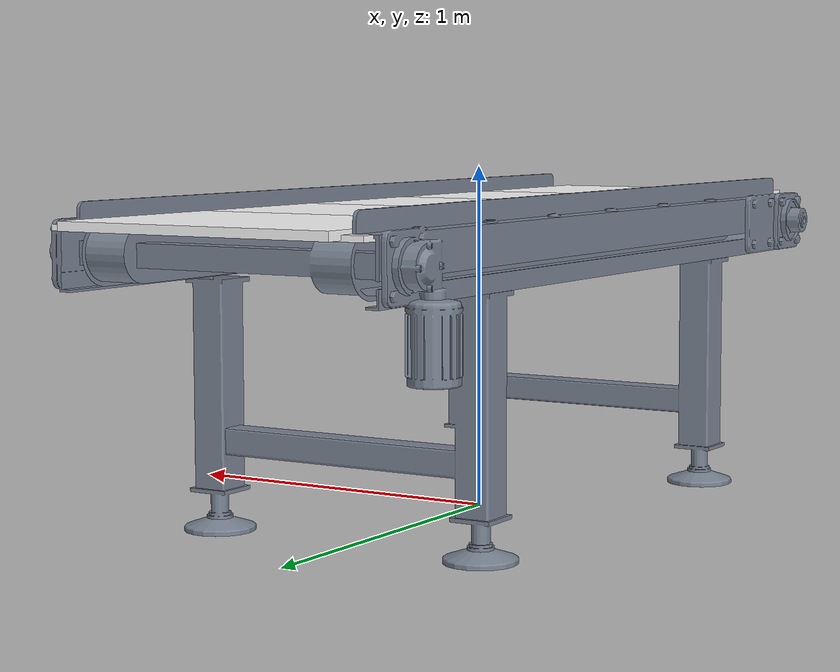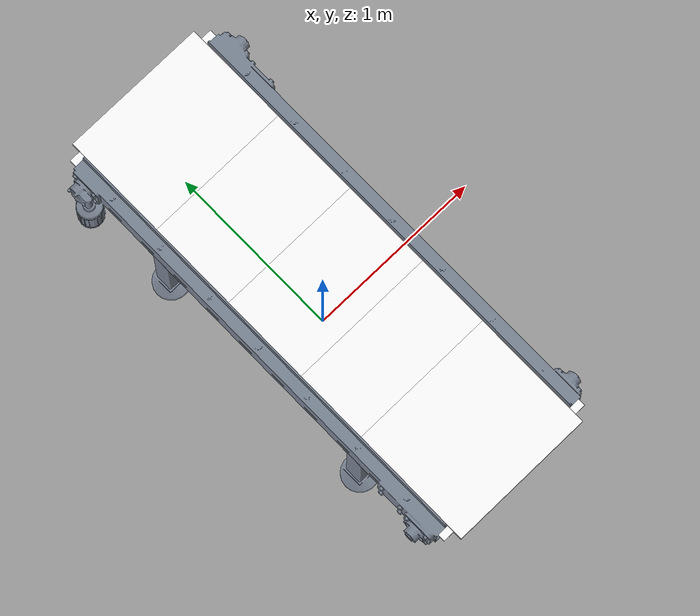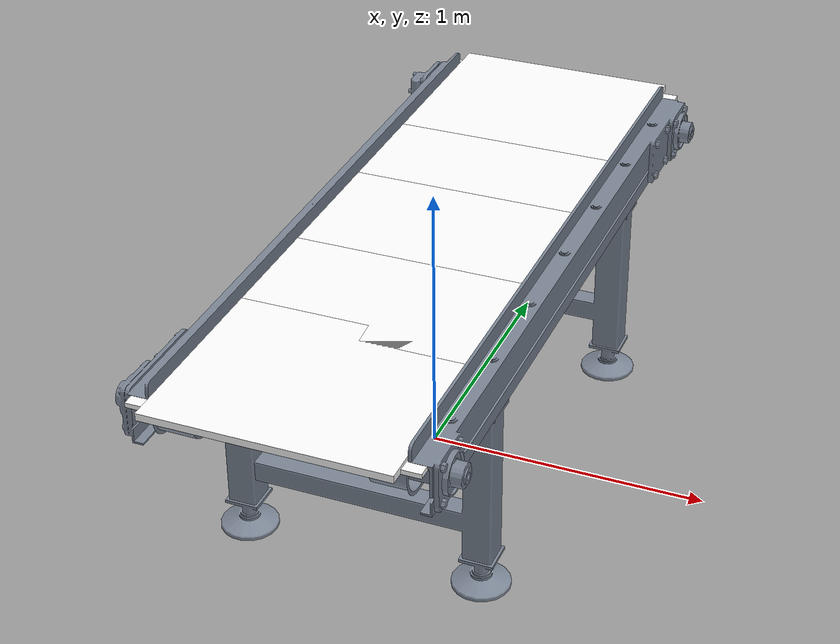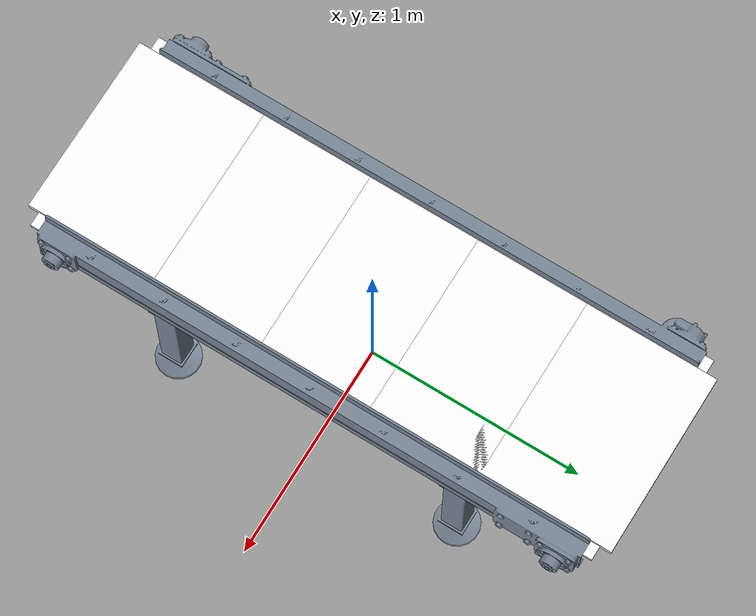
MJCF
<mujoco model="conveyor">
  <!-- Generated by generate.mjs. Edit the generator rather than this file. -->
  <compiler angle="radian" meshdir="meshes" texturedir="textures"/>
  <option timestep="0.002"/>

  <asset>
    <material name="conveyor_frame_mat" rgba="0.48 0.52 0.58 1" metallic="0.72" roughness="0.28"/>
    <texture name="belt_color" type="2d" file="rubber-color.png"/>
    <texture name="belt_normal" type="2d" file="rubber-normal.png"/>
    <texture name="belt_roughness" type="2d" file="rubber-roughness.png"/>
    <material name="conveyor_belt_mat" rgba="1 1 1 1" metallic="0" roughness="1">
      <layer role="rgb" texture="belt_color"/>
      <layer role="normal" texture="belt_normal"/>
      <layer role="roughness" texture="belt_roughness"/>
    </material>
    <mesh name="conveyor_visual_0" file="visual_0.obj" inertia="shell"/>
    <mesh name="conveyor_visual_1" file="visual_1.obj" inertia="shell"/>
    <mesh name="conveyor_visual_2" file="visual_2.obj" inertia="shell"/>
    <mesh name="conveyor_visual_3" file="visual_3.obj" inertia="shell"/>
    <mesh name="conveyor_belt_underlay_visual" file="belt-underlay.obj" inertia="shell"/>
    <mesh name="conveyor_belt_tile" file="belt-tile.obj" inertia="shell"/>
    <mesh name="conveyor_belt_end_tile" file="belt-end-tile.obj" inertia="shell"/>
  </asset>

  <worldbody>
    <body name="conveyor" pos="0 0 0">
      <!-- Visual meshes never participate in collision. -->
      <!-- Reusable polished 2.5 m visual module. -->
      <geom name="conveyor_visual_0_module_0" type="mesh" mesh="conveyor_visual_0"
            pos="0 0 0" material="conveyor_frame_mat" group="1"
            contype="0" conaffinity="0" mass="0"/>
      <geom name="conveyor_visual_1_module_0" type="mesh" mesh="conveyor_visual_1"
            pos="0 0 0" material="conveyor_frame_mat" group="1"
            contype="0" conaffinity="0" mass="0"/>
      <geom name="conveyor_visual_2_module_0" type="mesh" mesh="conveyor_visual_2"
            pos="0 0 0" material="conveyor_frame_mat" group="1"
            contype="0" conaffinity="0" mass="0"/>
      <geom name="conveyor_visual_3_module_0" type="mesh" mesh="conveyor_visual_3"
            pos="0 0 0" material="conveyor_frame_mat" group="1"
            contype="0" conaffinity="0" mass="0"/>
      <!-- Connection frames use local +Y as belt travel for drag-to-attach placement. -->
      <site name="attachment_site" pos="0 -1.25 0.88" xyaxes="1 0 0 0 1 0"
            size="0.035" group="4"/>
      <site name="attachment_site_outlet" pos="0 1.25 0.88" xyaxes="1 0 0 0 1 0"
            size="0.035" group="4"/>
      <!-- Raised rubber backing conceals tile seams and the frame beneath the rail edges. -->
      <geom name="conveyor_belt_underlay_visual" type="mesh" mesh="conveyor_belt_underlay_visual"
            pos="0.0179964 0 0" material="conveyor_belt_mat" group="1"
            contype="0" conaffinity="0" mass="0"/>

      <!-- Stable primitive collision scales with the generated conveyor length. -->
      <geom name="conveyor_frame_collision" type="box"
            pos="0.0179964 0 0.3527419" size="0.5205209 1.25 0.3527419"
            group="3" rgba="0 0 0 0" contype="1" conaffinity="0" density="37.4715"/>
      <geom name="conveyor_left_rail_collision" type="box"
            pos="-0.4912142 0 0.7242926" size="0.097543 1.25 0.21227"
            group="3" rgba="0 0 0 0" contype="1" conaffinity="0" density="37.4715"/>
      <geom name="conveyor_right_rail_collision" type="box"
            pos="0.5092106 0 0.8212732" size="0.0795466 1.25 0.1152895"
            group="3" rgba="0 0 0 0" contype="1" conaffinity="0" density="37.4715"/>

      <!-- Synchronized 0.5 m tiles form one continuous moving contact surface. -->
      <body name="conveyor_belt_segment_0" pos="0.0179964 -1 0.88">
        <joint name="conveyor_belt_segment_0_slide" type="slide" axis="0 1 0"
               range="-0.05 0.05" limited="false" damping="0"/>
        <geom name="conveyor_belt_segment_0_contact" type="box" size="0.39 0.34 0.0125"
              group="3" rgba="0 0 0 0" contype="1" conaffinity="2" condim="6" friction="1.8 0.08 0.02"
              solimp="0.9 0.98 0.0001" solref="0.002 1" mass="0.000749429"/>
        <!-- The visible tread shares this moving MuJoCo body with its contact tile. -->
        <geom name="conveyor_belt_segment_0_visual" type="mesh" mesh="conveyor_belt_end_tile"
              material="conveyor_belt_mat" group="1" contype="0" conaffinity="0" mass="0"/>
      </body>
      <body name="conveyor_belt_segment_1" pos="0.0179964 -0.5 0.88">
        <joint name="conveyor_belt_segment_1_slide" type="slide" axis="0 1 0"
               range="-0.05 0.05" limited="false" damping="0"/>
        <geom name="conveyor_belt_segment_1_contact" type="box" size="0.39 0.25 0.0125"
              group="3" rgba="0 0 0 0" contype="1" conaffinity="2" condim="6" friction="1.8 0.08 0.02"
              solimp="0.9 0.98 0.0001" solref="0.002 1" mass="0.000749429"/>
        <!-- The visible tread shares this moving MuJoCo body with its contact tile. -->
        <geom name="conveyor_belt_segment_1_visual" type="mesh" mesh="conveyor_belt_tile"
              material="conveyor_belt_mat" group="1" contype="0" conaffinity="0" mass="0"/>
      </body>
      <body name="conveyor_belt_segment_2" pos="0.0179964 0 0.88">
        <joint name="conveyor_belt_segment_2_slide" type="slide" axis="0 1 0"
               range="-0.05 0.05" limited="false" damping="0"/>
        <geom name="conveyor_belt_segment_2_contact" type="box" size="0.39 0.25 0.0125"
              group="3" rgba="0 0 0 0" contype="1" conaffinity="2" condim="6" friction="1.8 0.08 0.02"
              solimp="0.9 0.98 0.0001" solref="0.002 1" mass="0.000749429"/>
        <!-- The visible tread shares this moving MuJoCo body with its contact tile. -->
        <geom name="conveyor_belt_segment_2_visual" type="mesh" mesh="conveyor_belt_tile"
              material="conveyor_belt_mat" group="1" contype="0" conaffinity="0" mass="0"/>
      </body>
      <body name="conveyor_belt_segment_3" pos="0.0179964 0.5 0.88">
        <joint name="conveyor_belt_segment_3_slide" type="slide" axis="0 1 0"
               range="-0.05 0.05" limited="false" damping="0"/>
        <geom name="conveyor_belt_segment_3_contact" type="box" size="0.39 0.25 0.0125"
              group="3" rgba="0 0 0 0" contype="1" conaffinity="2" condim="6" friction="1.8 0.08 0.02"
              solimp="0.9 0.98 0.0001" solref="0.002 1" mass="0.000749429"/>
        <!-- The visible tread shares this moving MuJoCo body with its contact tile. -->
        <geom name="conveyor_belt_segment_3_visual" type="mesh" mesh="conveyor_belt_tile"
              material="conveyor_belt_mat" group="1" contype="0" conaffinity="0" mass="0"/>
      </body>
      <body name="conveyor_belt_segment_4" pos="0.0179964 1 0.88">
        <joint name="conveyor_belt_segment_4_slide" type="slide" axis="0 1 0"
               range="-0.05 0.05" limited="false" damping="0"/>
        <geom name="conveyor_belt_segment_4_contact" type="box" size="0.39 0.34 0.0125"
              group="3" rgba="0 0 0 0" contype="1" conaffinity="2" condim="6" friction="1.8 0.08 0.02"
              solimp="0.9 0.98 0.0001" solref="0.002 1" mass="0.000749429"/>
        <!-- The visible tread shares this moving MuJoCo body with its contact tile. -->
        <geom name="conveyor_belt_segment_4_visual" type="mesh" mesh="conveyor_belt_end_tile"
              material="conveyor_belt_mat" group="1" contype="0" conaffinity="0" mass="0"/>
      </body>
    </body>
  </worldbody>

  <equality>
    <joint name="belt_eq_0_1" joint1="conveyor_belt_segment_0_slide" joint2="conveyor_belt_segment_1_slide" polycoef="0 1 0 0 0"/>
    <joint name="belt_eq_1_2" joint1="conveyor_belt_segment_1_slide" joint2="conveyor_belt_segment_2_slide" polycoef="0 1 0 0 0"/>
    <joint name="belt_eq_2_3" joint1="conveyor_belt_segment_2_slide" joint2="conveyor_belt_segment_3_slide" polycoef="0 1 0 0 0"/>
    <joint name="belt_eq_3_4" joint1="conveyor_belt_segment_3_slide" joint2="conveyor_belt_segment_4_slide" polycoef="0 1 0 0 0"/>
  </equality>

  <actuator>
    <velocity name="conveyor_speed" joint="conveyor_belt_segment_0_slide" ctrlrange="-1.5 1.5" kv="20"/>
  </actuator>
</mujoco>
